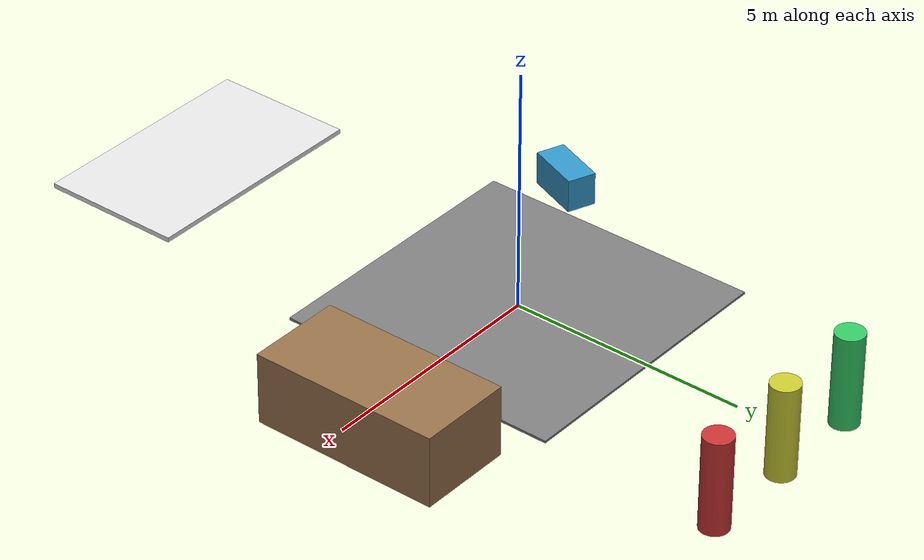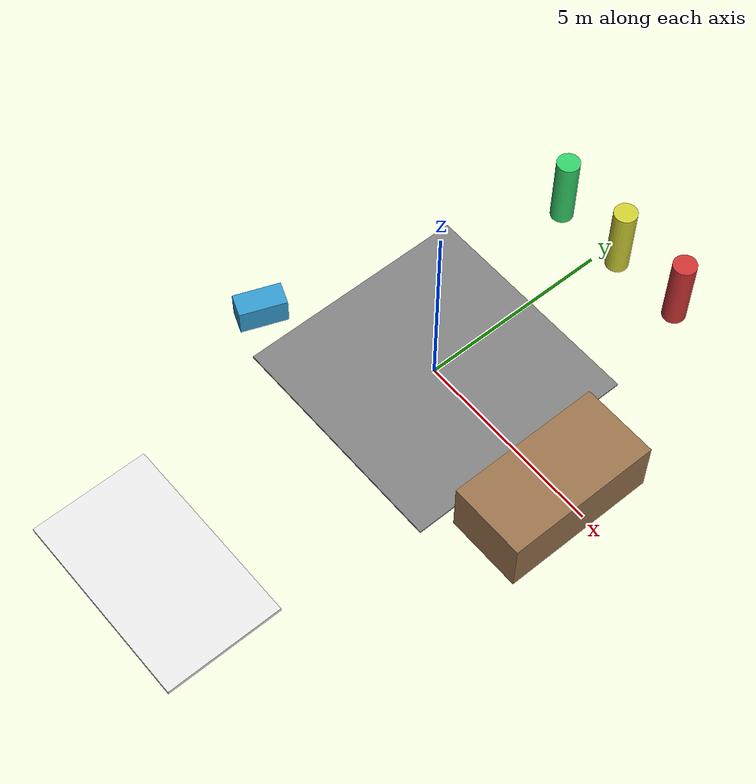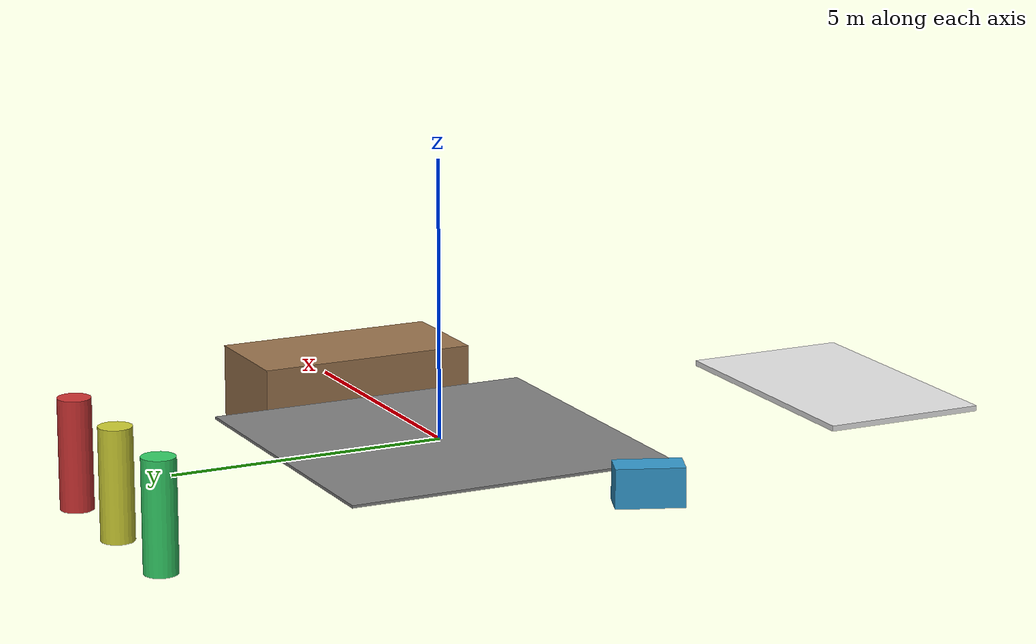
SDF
<sdf version="1.6">
 <world name="robot_ter_city">
  <physics type="ode">
   <max_step_size>0.001</max_step_size>
   <real_time_factor>1</real_time_factor>
   <real_time_update_rate>1000</real_time_update_rate>
  </physics>
  <include><uri>model://sun</uri></include>
  <model name="spawn_pad">
   <static>true</static>
   <link name="link">
    <collision name="collision"><geometry><box><size>6 6 0.05</size></box></geometry></collision>
    <visual name="visual">
     <geometry><box><size>6 6 0.05</size></box></geometry>
     <material><ambient>0.5 0.5 0.5 1</ambient><diffuse>0.5 0.5 0.5 1</diffuse></material>
    </visual>
   </link>
  </model>
  <model name="warehouse_block">
   <static>true</static>
   <pose>4 0 0 0 0 0</pose>
   <link name="link">
    <collision name="collision"><geometry><box><size>2 4 1.5</size></box></geometry></collision>
    <visual name="visual">
     <geometry><box><size>2 4 1.5</size></box></geometry>
     <material><ambient>0.4 0.3 0.2 1</ambient><diffuse>0.6 0.45 0.3 1</diffuse></material>
    </visual>
   </link>
  </model>
  <model name="charging_station">
   <static>true</static>
   <pose>-4 -2 0 0 0 1.2</pose>
   <link name="base">
    <collision name="collision"><geometry><box><size>1.2 0.6 0.7</size></box></geometry></collision>
    <visual name="visual">
     <geometry><box><size>1.2 0.6 0.7</size></box></geometry>
     <material><ambient>0.2 0.5 0.7 1</ambient><diffuse>0.2 0.6 0.8 1</diffuse></material>
    </visual>
   </link>
  </model>
  <model name="pillar_array">
   <static>true</static>
   <link name="column_1">
    <pose>0 6 0 0 0 0</pose>
    <collision name="collision">
     <geometry><cylinder><radius>0.3</radius><length>2</length></cylinder></geometry>
    </collision>
    <visual name="visual">
     <geometry><cylinder><radius>0.3</radius><length>2</length></cylinder></geometry>
     <material><ambient>0.8 0.8 0.2 1</ambient><diffuse>0.8 0.8 0.2 1</diffuse></material>
    </visual>
   </link>
   <link name="column_2">
    <pose>2 6 0 0 0 0</pose>
    <collision name="collision">
     <geometry><cylinder><radius>0.3</radius><length>2</length></cylinder></geometry>
    </collision>
    <visual name="visual">
     <geometry><cylinder><radius>0.3</radius><length>2</length></cylinder></geometry>
     <material><ambient>0.8 0.2 0.2 1</ambient><diffuse>0.8 0.2 0.2 1</diffuse></material>
    </visual>
   </link>
   <link name="column_3">
    <pose>-2 6 0 0 0 0</pose>
    <collision name="collision">
     <geometry><cylinder><radius>0.3</radius><length>2</length></cylinder></geometry>
    </collision>
    <visual name="visual">
     <geometry><cylinder><radius>0.3</radius><length>2</length></cylinder></geometry>
     <material><ambient>0.2 0.8 0.4 1</ambient><diffuse>0.2 0.8 0.4 1</diffuse></material>
    </visual>
   </link>
  </model>
  <model name="pedestrian_zone">
   <static>true</static>
   <pose>0 -8 0 0 0 0</pose>
   <link name="surface">
    <collision name="collision"><geometry><box><size>5 3 0.1</size></box></geometry></collision>
    <visual name="visual">
     <geometry><box><size>5 3 0.1</size></box></geometry>
     <material><ambient>0.9 0.9 0.9 1</ambient><diffuse>0.9 0.9 0.9 1</diffuse></material>
    </visual>
   </link>
  </model>
 </world>
</sdf>
